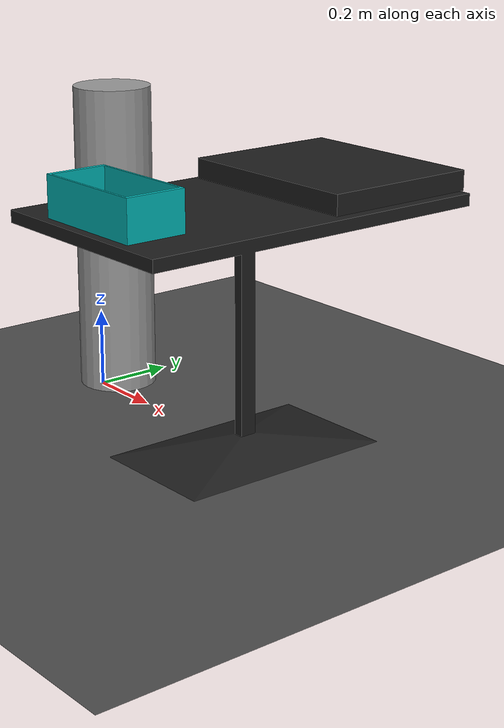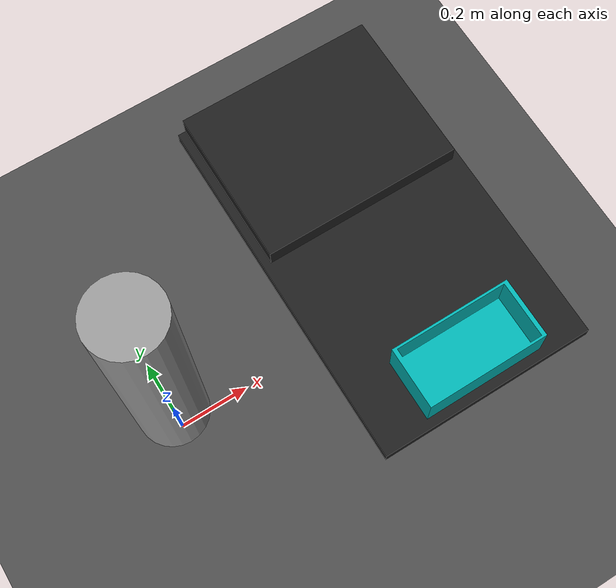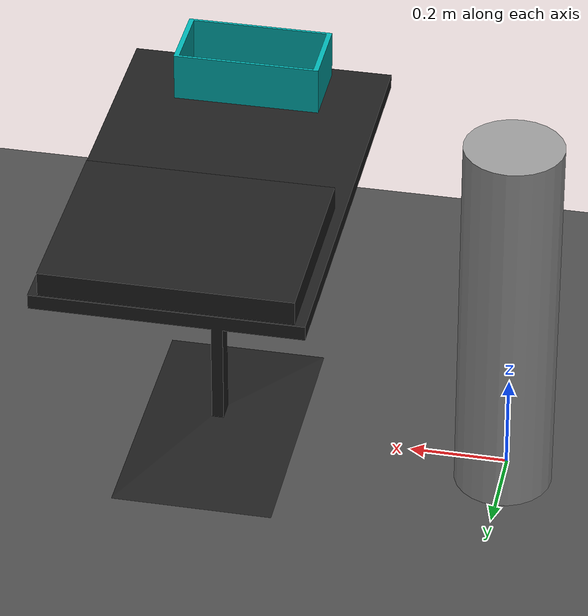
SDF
<sdf version="1.6">
 <world name="default">
  <light name="sun" type="directional">
   <pose>0 0 10 0 -0 0</pose>
   <diffuse>0.8 0.8 0.8 1</diffuse>
   <specular>0.2 0.2 0.2 1</specular>
   <attenuation>
    <range>1000</range>
    <constant>0.9</constant>
    <linear>0.01</linear>
    <quadratic>0.001</quadratic>
   </attenuation>
   <direction>-0.5 0.1 -0.9</direction>
  </light>
  <model name="ur5_base">
   <static>1</static>
   <include><uri>model://ur5_base</uri></include>
   <pose>0 0.05 0.3981 0 -0 0</pose>
   <scale>1 1 1</scale>
   <link name="link_base"><pose>0 0.05 0.3981 0 -0 0</pose></link>
  </model>
  <model name="ground_plane">
   <static>1</static>
   <link name="link">
    <collision name="collision">
     <geometry><plane><normal>0 0 1</normal><size>100 100</size></plane></geometry>
     <surface><friction><ode><mu>100</mu><mu2>50</mu2></ode></friction></surface>
    </collision>
    <visual name="visual">
     <cast_shadows>0</cast_shadows>
     <geometry><plane><normal>0 0 1</normal><size>100 100</size></plane></geometry>
     <material>
      <script><uri>file://media/materials/scripts/gazebo.material</uri><name>Gazebo/DarkGrey</name></script>
     </material>
    </visual>
   </link>
  </model>
  <gravity>0 0 -9.8</gravity>
  <magnetic_field>6e-06 2.3e-05 -4.2e-05</magnetic_field>
  <atmosphere type="adiabatic"/>
  <physics name="default_physics" default="0" type="ode">
   <max_step_size>0.001</max_step_size>
   <real_time_factor>1</real_time_factor>
   <real_time_update_rate>1000</real_time_update_rate>
  </physics>
  <scene><ambient>0.4 0.4 0.4 1</ambient><background>0.7 0.7 0.7 1</background><shadows>1</shadows></scene>
  <spherical_coordinates>
   <surface_model>EARTH_WGS84</surface_model>
   <latitude_deg>0</latitude_deg>
   <longitude_deg>0</longitude_deg>
   <elevation>0</elevation>
   <heading_deg>0</heading_deg>
  </spherical_coordinates>
  <model name="dropbox">
   <link name="link_0">
    <pose>0 -0 0 0 0 -1.56873</pose>
    <inertial>
     <mass>1</mass>
     <inertia>
      <ixx>0.166667</ixx>
      <ixy>0</ixy>
      <ixz>0</ixz>
      <iyy>0.166667</iyy>
      <iyz>0</iyz>
      <izz>0.166667</izz>
     </inertia>
    </inertial>
    <visual name="visual">
     <geometry><mesh><uri>model://dropbox/meshes/dropbox.dae</uri><scale>0.5 0.5 0.5</scale></mesh></geometry>
     <material>
      <lighting>1</lighting>
      <script><uri>file://media/materials/scripts/gazebo.material</uri><name>Gazebo/Grey</name></script>
      <ambient>0 0.3 0.3 1</ambient>
      <diffuse>0 0.7 0.7 1</diffuse>
      <specular>0 0.01 0.01 1</specular>
      <emissive>0 0 0 1</emissive>
     </material>
    </visual>
    <collision name="collision">
     <geometry><mesh><uri>model://dropbox/meshes/dropbox.dae</uri><scale>0.5 0.5 0.5</scale></mesh></geometry>
     <surface>
      <friction>
       <ode><mu>1</mu><mu2>1</mu2><fdir1>0 0 0</fdir1><slip1>0</slip1><slip2>0</slip2></ode>
       <torsional>
        <coefficient>1</coefficient>
        <patch_radius>0</patch_radius>
        <surface_radius>0</surface_radius>
        <use_patch_radius>1</use_patch_radius>
        <ode><slip>0</slip></ode>
       </torsional>
      </friction>
      <bounce><restitution_coefficient>0</restitution_coefficient><threshold>1e+06</threshold></bounce>
      <contact>
       <collide_without_contact>0</collide_without_contact>
       <collide_without_contact_bitmask>1</collide_without_contact_bitmask>
       <collide_bitmask>1</collide_bitmask>
       <ode>
        <soft_cfm>0</soft_cfm>
        <soft_erp>0.2</soft_erp>
        <kp>1e+13</kp>
        <kd>1</kd>
        <max_vel>0.01</max_vel>
        <min_depth>0</min_depth>
       </ode>
       <bullet>
        <split_impulse>1</split_impulse>
        <split_impulse_penetration_threshold>-0.01</split_impulse_penetration_threshold>
        <soft_cfm>0</soft_cfm>
        <soft_erp>0.2</soft_erp>
        <kp>1e+13</kp>
        <kd>1</kd>
       </bullet>
      </contact>
     </surface>
    </collision>
   </link>
   <static>1</static>
   <pose>0.6 -0.36 0.61 0 -0 0</pose>
  </model>
  <model name="short_table">
   <link name="link_0">
    <inertial>
     <mass>1</mass>
     <inertia>
      <ixx>0.166667</ixx>
      <ixy>0</ixy>
      <ixz>0</ixz>
      <iyy>0.166667</iyy>
      <iyz>0</iyz>
      <izz>0.166667</izz>
     </inertia>
    </inertial>
    <visual name="visual">
     <geometry><mesh><uri>model://short_table/meshes/short_table.dae</uri><scale>1 1 1</scale></mesh></geometry>
     <material>
      <lighting>1</lighting>
      <script><uri>file://media/materials/scripts/gazebo.material</uri><name>Gazebo/Black</name></script>
     </material>
    </visual>
    <collision name="collision">
     <geometry><mesh><uri>model://short_table/meshes/short_table.dae</uri><scale>1 1 1</scale></mesh></geometry>
     <surface>
      <friction>
       <ode><mu>1</mu><mu2>1</mu2><fdir1>0 0 0</fdir1><slip1>0</slip1><slip2>0</slip2></ode>
       <torsional>
        <coefficient>1</coefficient>
        <patch_radius>0</patch_radius>
        <surface_radius>0</surface_radius>
        <use_patch_radius>1</use_patch_radius>
        <ode><slip>0</slip></ode>
       </torsional>
      </friction>
      <bounce><restitution_coefficient>0</restitution_coefficient><threshold>1e+06</threshold></bounce>
      <contact>
       <collide_without_contact>0</collide_without_contact>
       <collide_without_contact_bitmask>1</collide_without_contact_bitmask>
       <collide_bitmask>1</collide_bitmask>
       <ode>
        <soft_cfm>0</soft_cfm>
        <soft_erp>0.2</soft_erp>
        <kp>1e+13</kp>
        <kd>1</kd>
        <max_vel>0.01</max_vel>
        <min_depth>0</min_depth>
       </ode>
       <bullet>
        <split_impulse>1</split_impulse>
        <split_impulse_penetration_threshold>-0.01</split_impulse_penetration_threshold>
        <soft_cfm>0</soft_cfm>
        <soft_erp>0.2</soft_erp>
        <kp>1e+13</kp>
        <kd>1</kd>
       </bullet>
      </contact>
     </surface>
    </collision>
   </link>
   <static>1</static>
   <pose>0.6 0 0 0 -0 0</pose>
  </model>
  <model name="unit_box">
   <include><uri>model://unit_box</uri></include>
   <pose>0.6 0.257 0.638 0 0 0</pose>
   <scale>1 1 1</scale>
   <link name="box_link"><pose>0.6 0.257 0.638 0 0 0</pose></link>
  </model>
 </world>
</sdf>

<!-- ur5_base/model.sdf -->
<sdf version='1.6'>
  <model name='ur5_base'>
    <link name='ur5_base::link_0'>
      <pose frame=''>0 0 0 0 -0 0</pose>
      <inertial>
        <mass>1</mass>
        <inertia>
          <ixx>0.145833</ixx>
          <ixy>0</ixy>
          <ixz>0</ixz>
          <iyy>0.145833</iyy>
          <iyz>0</iyz>
          <izz>0.125</izz>
        </inertia>
        <pose frame=''>0 0 0 0 -0 0</pose>
      </inertial>
      <self_collide>0</self_collide>
      <kinematic>0</kinematic>
      <gravity>1</gravity>
      <visual name='visual'>
        <pose frame=''>0 0 0 0 -0 0</pose>
        <geometry>
          <cylinder>
            <radius>0.1</radius>
            <length>0.797</length>
          </cylinder>
        </geometry>
        <material>
          <lighting>1</lighting>
          <script>
            <uri>file://media/materials/scripts/gazebo.material</uri>
            <name>Gazebo/Grey</name>
          </script>
          <ambient>0.3 0.3 0.3 1</ambient>
          <diffuse>0.7 0.7 0.7 1</diffuse>
          <specular>0.01 0.01 0.01 1</specular>
          <emissive>0 0 0 1</emissive>
          <shader type='vertex'>
            <normal_map>__default__</normal_map>
          </shader>
        </material>
        <cast_shadows>1</cast_shadows>
        <transparency>0</transparency>
      </visual>
      <collision name='collision'>
        <laser_retro>0</laser_retro>
        <max_contacts>10</max_contacts>
        <pose frame=''>0 0 0 0 -0 0</pose>
        <geometry>
          <cylinder>
            <radius>0.1</radius>
            <length>0.797</length>
          </cylinder>
        </geometry>
        <surface>
          <friction>
            <ode>
              <mu>1</mu>
              <mu2>1</mu2>
              <fdir1>0 0 0</fdir1>
              <slip1>0</slip1>
              <slip2>0</slip2>
            </ode>
            <torsional>
              <coefficient>1</coefficient>
              <patch_radius>0</patch_radius>
              <surface_radius>0</surface_radius>
              <use_patch_radius>1</use_patch_radius>
              <ode>
                <slip>0</slip>
              </ode>
            </torsional>
          </friction>
          <bounce>
            <restitution_coefficient>0</restitution_coefficient>
            <threshold>1e+06</threshold>
          </bounce>
          <contact>
            <collide_without_contact>0</collide_without_contact>
            <collide_without_contact_bitmask>1</collide_without_contact_bitmask>
            <collide_bitmask>1</collide_bitmask>
            <ode>
              <soft_cfm>0</soft_cfm>
              <soft_erp>0.2</soft_erp>
              <kp>1e+13</kp>
              <kd>1</kd>
              <max_vel>0.01</max_vel>
              <min_depth>0</min_depth>
            </ode>
            <bullet>
              <split_impulse>1</split_impulse>
              <split_impulse_penetration_threshold>-0.01</split_impulse_penetration_threshold>
              <soft_cfm>0</soft_cfm>
              <soft_erp>0.2</soft_erp>
              <kp>1e+13</kp>
              <kd>1</kd>
            </bullet>
          </contact>
        </surface>
      </collision>
    </link>
    <link name='link_base'>
      <pose frame=''>0 0.05 0.3981 0 -0 0</pose>
      <self_collide>0</self_collide>
      <kinematic>0</kinematic>
    </link>
    <static>1</static>
    <allow_auto_disable>1</allow_auto_disable>
  </model>
</sdf>

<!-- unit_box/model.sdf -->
<sdf version='1.6'>
  <model name='unit_box'>
    <link name='link'>
      <pose frame=''>0 0 0 0 -0 0</pose>
      <inertial>
        <mass>1</mass>
        <inertia>
          <ixx>0.166667</ixx>
          <ixy>0</ixy>
          <ixz>0</ixz>
          <iyy>0.166667</iyy>
          <iyz>0</iyz>
          <izz>0.166667</izz>
        </inertia>
        <pose frame=''>0 0 0 0 -0 0</pose>
      </inertial>
      <self_collide>0</self_collide>
      <kinematic>0</kinematic>
      <gravity>1</gravity>
      <visual name='visual'>
        <geometry>
          <box>
            <size>0.5 0.4 0.05</size>
          </box>
        </geometry>
        <material>
          <script>
            <name>Gazebo/Black</name>
            <uri>file://media/materials/scripts/gazebo.material</uri>
          </script>
          <ambient>0 0 0 1</ambient>
          <diffuse>0 0 0 1</diffuse>
          <specular>0 0 0 1</specular>
          <emissive>0 0 0 1</emissive>
          <shader type='vertex'>
            <normal_map>__default__</normal_map>
          </shader>
        </material>
        <pose frame=''>0 0 0 0 -0 0</pose>
        <cast_shadows>1</cast_shadows>
        <transparency>0</transparency>
      </visual>
      <collision name='collision'>
        <laser_retro>0</laser_retro>
        <max_contacts>10</max_contacts>
        <pose frame=''>0 0 0 0 -0 0</pose>
        <geometry>
          <box>
            <size>0.5 0.4 0.05</size>
          </box>
        </geometry>
        <surface>
          <friction>
            <ode>
              <mu>1</mu>
              <mu2>1</mu2>
              <fdir1>0 0 0</fdir1>
              <slip1>0</slip1>
              <slip2>0</slip2>
            </ode>
            <torsional>
              <coefficient>1</coefficient>
              <patch_radius>0</patch_radius>
              <surface_radius>0</surface_radius>
              <use_patch_radius>1</use_patch_radius>
              <ode>
                <slip>0</slip>
              </ode>
            </torsional>
          </friction>
          <bounce>
            <restitution_coefficient>0</restitution_coefficient>
            <threshold>1e+06</threshold>
          </bounce>
          <contact>
            <collide_without_contact>0</collide_without_contact>
            <collide_without_contact_bitmask>1</collide_without_contact_bitmask>
            <collide_bitmask>1</collide_bitmask>
            <ode>
              <soft_cfm>0</soft_cfm>
              <soft_erp>0.2</soft_erp>
              <kp>1e+13</kp>
              <kd>1</kd>
              <max_vel>0.01</max_vel>
              <min_depth>0</min_depth>
            </ode>
            <bullet>
              <split_impulse>1</split_impulse>
              <split_impulse_penetration_threshold>-0.01</split_impulse_penetration_threshold>
              <soft_cfm>0</soft_cfm>
              <soft_erp>0.2</soft_erp>
              <kp>1e+13</kp>
              <kd>1</kd>
            </bullet>
          </contact>
        </surface>
      </collision>
    </link>
    <static>0</static>
    <allow_auto_disable>1</allow_auto_disable>
  </model>
</sdf>
